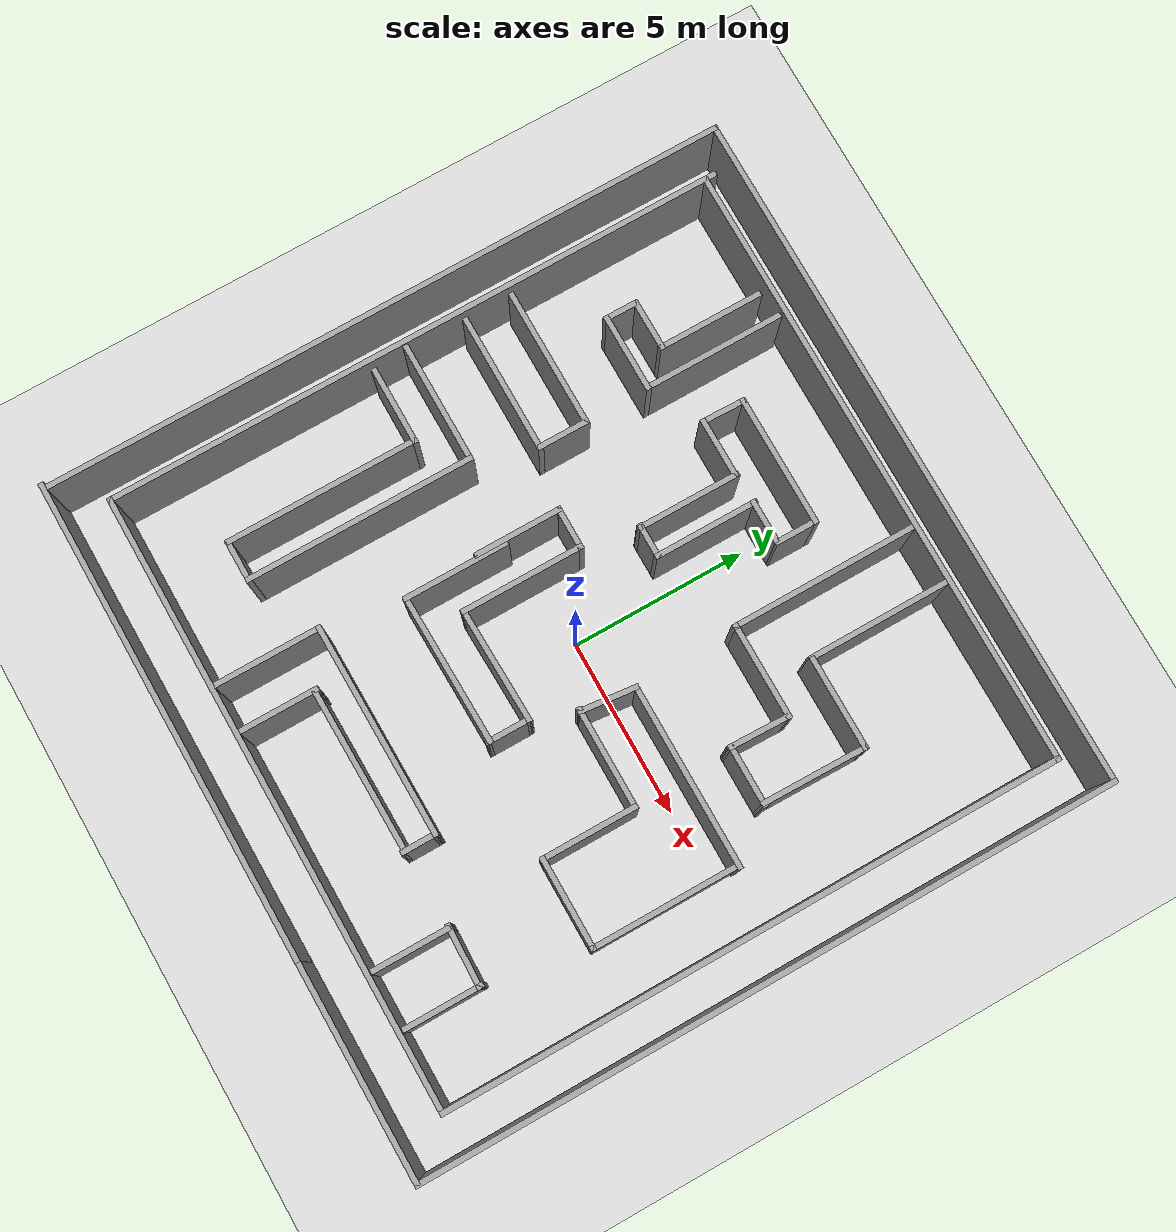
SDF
<sdf version="1.7">
 <world name="default">
  <light name="sun" type="directional">
   <pose>0 0 10 0 -0 0</pose>
   <diffuse>0.8 0.8 0.8 1</diffuse>
   <specular>0.2 0.2 0.2 1</specular>
   <attenuation>
    <range>1000</range>
    <constant>0.9</constant>
    <linear>0.01</linear>
    <quadratic>0.001</quadratic>
   </attenuation>
   <direction>-0.5 0.1 -0.9</direction>
   <spot><inner_angle>0</inner_angle><outer_angle>0</outer_angle><falloff>0</falloff></spot>
  </light>
  <model name="ground_plane">
   <static>1</static>
   <link name="link">
    <collision name="collision">
     <geometry><plane><normal>0 0 1</normal><size>100 100</size></plane></geometry>
     <surface><friction><ode><mu>100</mu><mu2>50</mu2></ode></friction></surface>
    </collision>
    <visual name="visual">
     <cast_shadows>0</cast_shadows>
     <geometry><plane><normal>0 0 1</normal><size>100 100</size></plane></geometry>
     <material>
      <script><uri>file://media/materials/scripts/gazebo.material</uri><name>Gazebo/Grey</name></script>
     </material>
    </visual>
   </link>
  </model>
  <gravity>0 0 -9.8</gravity>
  <magnetic_field>6e-06 2.3e-05 -4.2e-05</magnetic_field>
  <atmosphere type="adiabatic"/>
  <physics type="ode">
   <max_step_size>0.001</max_step_size>
   <real_time_factor>1</real_time_factor>
   <real_time_update_rate>1000</real_time_update_rate>
  </physics>
  <scene><ambient>0.4 0.4 0.4 1</ambient><background>0.7 0.7 0.7 1</background><shadows>1</shadows></scene>
  <audio><device>default</device></audio>
  <spherical_coordinates>
   <surface_model>EARTH_WGS84</surface_model>
   <latitude_deg>0</latitude_deg>
   <longitude_deg>0</longitude_deg>
   <elevation>0</elevation>
   <heading_deg>0</heading_deg>
  </spherical_coordinates>
  <model name="test7">
   <pose>-0.000778 -0.117679 0 0 -0 0</pose>
   <link name="Wall_0">
    <collision name="Wall_0_Collision">
     <geometry><box><size>13.75 0.15 2.5</size></box></geometry>
     <pose>0 0 1.25 0 -0 0</pose>
    </collision>
    <visual name="Wall_0_Visual">
     <pose>0 0 1.25 0 -0 0</pose>
     <geometry><box><size>13.75 0.15 2.5</size></box></geometry>
     <material>
      <script><uri>file://media/materials/scripts/gazebo.material</uri><name>Gazebo/Grey</name></script>
      <ambient>1 1 1 1</ambient>
     </material>
     <meta><layer>0</layer></meta>
    </visual>
    <pose>-3.05 -9.8 0 0 -0 0</pose>
   </link>
   <link name="Wall_10">
    <collision name="Wall_10_Collision">
     <geometry><box><size>17.5 0.15 2.5</size></box></geometry>
     <pose>0 0 1.25 0 -0 0</pose>
    </collision>
    <visual name="Wall_10_Visual">
     <pose>0 0 1.25 0 -0 0</pose>
     <geometry><box><size>17.5 0.15 2.5</size></box></geometry>
     <material>
      <script><uri>file://media/materials/scripts/gazebo.material</uri><name>Gazebo/Grey</name></script>
      <ambient>1 1 1 1</ambient>
     </material>
     <meta><layer>0</layer></meta>
    </visual>
    <pose>0.011162 8.87805 0 0 -0 3.14159</pose>
   </link>
   <link name="Wall_12">
    <collision name="Wall_12_Collision">
     <geometry><box><size>4 0.15 2.5</size></box></geometry>
     <pose>0 0 1.25 0 -0 0</pose>
    </collision>
    <visual name="Wall_12_Visual">
     <pose>0 0 1.25 0 -0 0</pose>
     <geometry><box><size>4 0.15 2.5</size></box></geometry>
     <material>
      <script><uri>file://media/materials/scripts/gazebo.material</uri><name>Gazebo/Grey</name></script>
      <ambient>1 1 1 1</ambient>
     </material>
     <meta><layer>0</layer></meta>
    </visual>
    <pose>-4.54415 6.72153 0 0 -0 -1.5708</pose>
   </link>
   <link name="Wall_13">
    <collision name="Wall_13_Collision">
     <geometry><box><size>2.25 0.15 2.5</size></box></geometry>
     <pose>0 0 1.25 0 -0 0</pose>
    </collision>
    <visual name="Wall_13_Visual">
     <pose>0 0 1.25 0 -0 0</pose>
     <geometry><box><size>2.25 0.15 2.5</size></box></geometry>
     <material>
      <script><uri>file://media/materials/scripts/gazebo.material</uri><name>Gazebo/Grey</name></script>
      <ambient>1 1 1 1</ambient>
     </material>
     <meta><layer>0</layer></meta>
    </visual>
    <pose>-5.59415 4.79653 0 0 -0 3.14159</pose>
   </link>
   <link name="Wall_14">
    <collision name="Wall_14_Collision">
     <geometry><box><size>1 0.15 2.5</size></box></geometry>
     <pose>0 0 1.25 0 -0 0</pose>
    </collision>
    <visual name="Wall_14_Visual">
     <pose>0 0 1.25 0 -0 0</pose>
     <geometry><box><size>1 0.15 2.5</size></box></geometry>
     <material>
      <script><uri>file://media/materials/scripts/gazebo.material</uri><name>Gazebo/Grey</name></script>
      <ambient>1 1 1 1</ambient>
     </material>
     <meta><layer>0</layer></meta>
    </visual>
    <pose>-6.64414 5.22153 0 0 -0 1.5708</pose>
   </link>
   <link name="Wall_15">
    <collision name="Wall_15_Collision">
     <geometry><box><size>1.5 0.15 2.5</size></box></geometry>
     <pose>0 0 1.25 0 -0 0</pose>
    </collision>
    <visual name="Wall_15_Visual">
     <pose>0 0 1.25 0 -0 0</pose>
     <geometry><box><size>1.5 0.15 2.5</size></box></geometry>
     <material>
      <script><uri>file://media/materials/scripts/gazebo.material</uri><name>Gazebo/Grey</name></script>
      <ambient>1 1 1 1</ambient>
     </material>
     <meta><layer>0</layer></meta>
    </visual>
    <pose>-5.96915 5.64653 0 0 -0 0</pose>
   </link>
   <link name="Wall_16">
    <collision name="Wall_16_Collision">
     <geometry><box><size>3 0.15 2.5</size></box></geometry>
     <pose>0 0 1.25 0 -0 0</pose>
    </collision>
    <visual name="Wall_16_Visual">
     <pose>0 0 1.25 0 -0 0</pose>
     <geometry><box><size>3 0.15 2.5</size></box></geometry>
     <material>
      <script><uri>file://media/materials/scripts/gazebo.material</uri><name>Gazebo/Grey</name></script>
      <ambient>1 1 1 1</ambient>
     </material>
     <meta><layer>0</layer></meta>
    </visual>
    <pose>-5.29415 7.07153 0 0 -0 1.5708</pose>
   </link>
   <link name="Wall_18">
    <collision name="Wall_18_Collision">
     <geometry><box><size>3 0.15 2.5</size></box></geometry>
     <pose>0 0 1.25 0 -0 0</pose>
    </collision>
    <visual name="Wall_18_Visual">
     <pose>0 0 1.25 0 -0 0</pose>
     <geometry><box><size>3 0.15 2.5</size></box></geometry>
     <material>
      <script><uri>file://media/materials/scripts/gazebo.material</uri><name>Gazebo/Grey</name></script>
      <ambient>1 1 1 1</ambient>
     </material>
     <meta><layer>0</layer></meta>
    </visual>
    <pose>-2.77856 -1.76689 0 0 -0 -1.5708</pose>
   </link>
   <link name="Wall_19">
    <collision name="Wall_19_Collision">
     <geometry><box><size>4.32345 0.15 2.5</size></box></geometry>
     <pose>0 0 1.25 0 -0 0</pose>
    </collision>
    <visual name="Wall_19_Visual">
     <pose>0 0 1.25 0 -0 0</pose>
     <geometry><box><size>4.32345 0.15 2.5</size></box></geometry>
     <material>
      <script><uri>file://media/materials/scripts/gazebo.material</uri><name>Gazebo/Grey</name></script>
      <ambient>1 1 1 1</ambient>
     </material>
     <meta><layer>0</layer></meta>
    </visual>
    <pose>-0.69223 -3.15144 0 0 -0 0.019388</pose>
   </link>
   <link name="Wall_2">
    <collision name="Wall_2_Collision">
     <geometry><box><size>6.25 0.15 2.5</size></box></geometry>
     <pose>0 0 1.25 0 -0 0</pose>
    </collision>
    <visual name="Wall_2_Visual">
     <pose>0 0 1.25 0 -0 0</pose>
     <geometry><box><size>6.25 0.15 2.5</size></box></geometry>
     <material>
      <script><uri>file://media/materials/scripts/gazebo.material</uri><name>Gazebo/Grey</name></script>
      <ambient>1 1 1 1</ambient>
     </material>
     <meta><layer>0</layer></meta>
    </visual>
    <pose>6.8 -9.8 0 0 -0 0</pose>
   </link>
   <link name="Wall_20">
    <collision name="Wall_20_Collision">
     <geometry><box><size>1.25 0.15 2.5</size></box></geometry>
     <pose>0 0 1.25 0 -0 0</pose>
    </collision>
    <visual name="Wall_20_Visual">
     <pose>0 0 1.25 0 -0 0</pose>
     <geometry><box><size>1.25 0.15 2.5</size></box></geometry>
     <material>
      <script><uri>file://media/materials/scripts/gazebo.material</uri><name>Gazebo/Grey</name></script>
      <ambient>1 1 1 1</ambient>
     </material>
     <meta><layer>0</layer></meta>
    </visual>
    <pose>1.3941 -2.60144 0 0 -0 1.5708</pose>
   </link>
   <link name="Wall_21">
    <collision name="Wall_21_Collision">
     <geometry><box><size>3.3237 0.15 2.5</size></box></geometry>
     <pose>0 0 1.25 0 -0 0</pose>
    </collision>
    <visual name="Wall_21_Visual">
     <pose>0 0 1.25 0 -0 0</pose>
     <geometry><box><size>3.3237 0.15 2.5</size></box></geometry>
     <material>
      <script><uri>file://media/materials/scripts/gazebo.material</uri><name>Gazebo/Grey</name></script>
      <ambient>1 1 1 1</ambient>
     </material>
     <meta><layer>0</layer></meta>
    </visual>
    <pose>-0.19223 -2.05144 0 0 -0 -3.1161</pose>
   </link>
   <link name="Wall_22">
    <collision name="Wall_22_Collision">
     <geometry><box><size>3.5 0.15 2.5</size></box></geometry>
     <pose>0 0 1.25 0 -0 0</pose>
    </collision>
    <visual name="Wall_22_Visual">
     <pose>0 0 1.25 0 -0 0</pose>
     <geometry><box><size>3.5 0.15 2.5</size></box></geometry>
     <material>
      <script><uri>file://media/materials/scripts/gazebo.material</uri><name>Gazebo/Grey</name></script>
      <ambient>1 1 1 1</ambient>
     </material>
     <meta><layer>0</layer></meta>
    </visual>
    <pose>-1.77856 -0.416892 0 0 -0 1.5708</pose>
   </link>
   <link name="Wall_23">
    <collision name="Wall_23_Collision">
     <geometry><box><size>1.25 0.15 2.5</size></box></geometry>
     <pose>0 0 1.25 0 -0 0</pose>
    </collision>
    <visual name="Wall_23_Visual">
     <pose>0 0 1.25 0 -0 0</pose>
     <geometry><box><size>1.25 0.15 2.5</size></box></geometry>
     <material>
      <script><uri>file://media/materials/scripts/gazebo.material</uri><name>Gazebo/Grey</name></script>
      <ambient>1 1 1 1</ambient>
     </material>
     <meta><layer>0</layer></meta>
    </visual>
    <pose>-2.32856 1.25811 0 0 -0 3.14159</pose>
   </link>
   <link name="Wall_25">
    <collision name="Wall_25_Collision">
     <geometry><box><size>2.5 0.15 2.5</size></box></geometry>
     <pose>0 0 1.25 0 -0 0</pose>
    </collision>
    <visual name="Wall_25_Visual">
     <pose>0 0 1.25 0 -0 0</pose>
     <geometry><box><size>2.5 0.15 2.5</size></box></geometry>
     <material>
      <script><uri>file://media/materials/scripts/gazebo.material</uri><name>Gazebo/Grey</name></script>
      <ambient>1 1 1 1</ambient>
     </material>
     <meta><layer>0</layer></meta>
    </visual>
    <pose>-2.87856 0.083108 0 0 -0 -1.5708</pose>
   </link>
   <link name="Wall_28">
    <collision name="Wall_28_Collision">
     <geometry><box><size>3.75 0.15 2.5</size></box></geometry>
     <pose>0 0 1.25 0 -0 0</pose>
    </collision>
    <visual name="Wall_28_Visual">
     <pose>0 0 1.25 0 -0 0</pose>
     <geometry><box><size>3.75 0.15 2.5</size></box></geometry>
     <material>
      <script><uri>file://media/materials/scripts/gazebo.material</uri><name>Gazebo/Grey</name></script>
      <ambient>1 1 1 1</ambient>
     </material>
     <meta><layer>0</layer></meta>
    </visual>
    <pose>-1.23941 6.73274 0 0 -0 0</pose>
   </link>
   <link name="Wall_29">
    <collision name="Wall_29_Collision">
     <geometry><box><size>1.25 0.15 2.5</size></box></geometry>
     <pose>0 0 1.25 0 -0 0</pose>
    </collision>
    <visual name="Wall_29_Visual">
     <pose>0 0 1.25 0 -0 0</pose>
     <geometry><box><size>1.25 0.15 2.5</size></box></geometry>
     <material>
      <script><uri>file://media/materials/scripts/gazebo.material</uri><name>Gazebo/Grey</name></script>
      <ambient>1 1 1 1</ambient>
     </material>
     <meta><layer>0</layer></meta>
    </visual>
    <pose>0.560587 6.18274 0 0 -0 -1.5708</pose>
   </link>
   <link name="Wall_3">
    <collision name="Wall_3_Collision">
     <geometry><box><size>19.75 0.15 2.5</size></box></geometry>
     <pose>0 0 1.25 0 -0 0</pose>
    </collision>
    <visual name="Wall_3_Visual">
     <pose>0 0 1.25 0 -0 0</pose>
     <geometry><box><size>19.75 0.15 2.5</size></box></geometry>
     <material>
      <script><uri>file://media/materials/scripts/gazebo.material</uri><name>Gazebo/Grey</name></script>
      <ambient>1 1 1 1</ambient>
     </material>
     <meta><layer>0</layer></meta>
    </visual>
    <pose>9.85 -0 0 0 -0 1.5708</pose>
   </link>
   <link name="Wall_31">
    <collision name="Wall_31_Collision">
     <geometry><box><size>1.27578 0.15 2.5</size></box></geometry>
     <pose>0 0 1.25 0 -0 0</pose>
    </collision>
    <visual name="Wall_31_Visual">
     <pose>0 0 1.25 0 -0 0</pose>
     <geometry><box><size>1.27578 0.15 2.5</size></box></geometry>
     <material>
      <script><uri>file://media/materials/scripts/gazebo.material</uri><name>Gazebo/Grey</name></script>
      <ambient>1 1 1 1</ambient>
     </material>
     <meta><layer>0</layer></meta>
    </visual>
    <pose>-3.05216 6.16999 0 0 -0 1.54815</pose>
   </link>
   <link name="Wall_34">
    <collision name="Wall_34_Collision">
     <geometry><box><size>4 0.15 2.5</size></box></geometry>
     <pose>0 0 1.25 0 -0 0</pose>
    </collision>
    <visual name="Wall_34_Visual">
     <pose>0 0 1.25 0 -0 0</pose>
     <geometry><box><size>4 0.15 2.5</size></box></geometry>
     <material>
      <script><uri>file://media/materials/scripts/gazebo.material</uri><name>Gazebo/Grey</name></script>
      <ambient>1 1 1 1</ambient>
     </material>
     <meta><layer>0</layer></meta>
    </visual>
    <pose>3.52046 6.80827 0 0 -0 -1.5708</pose>
   </link>
   <link name="Wall_35">
    <collision name="Wall_35_Collision">
     <geometry><box><size>2.67995 0.15 2.5</size></box></geometry>
     <pose>0 0 1.25 0 -0 0</pose>
    </collision>
    <visual name="Wall_35_Visual">
     <pose>0 0 1.25 0 -0 0</pose>
     <geometry><box><size>2.67995 0.15 2.5</size></box></geometry>
     <material>
      <script><uri>file://media/materials/scripts/gazebo.material</uri><name>Gazebo/Grey</name></script>
      <ambient>1 1 1 1</ambient>
     </material>
     <meta><layer>0</layer></meta>
    </visual>
    <pose>4.83196 4.88326 0 0 -0 0</pose>
   </link>
   <link name="Wall_36">
    <collision name="Wall_36_Collision">
     <geometry><box><size>3.02935 0.15 2.5</size></box></geometry>
     <pose>0 0 1.25 0 -0 0</pose>
    </collision>
    <visual name="Wall_36_Visual">
     <pose>0 0 1.25 0 -0 0</pose>
     <geometry><box><size>3.02935 0.15 2.5</size></box></geometry>
     <material>
      <script><uri>file://media/materials/scripts/gazebo.material</uri><name>Gazebo/Grey</name></script>
      <ambient>1 1 1 1</ambient>
     </material>
     <meta><layer>0</layer></meta>
    </visual>
    <pose>6.0767 3.44373 0 0 -0 -1.58485</pose>
   </link>
   <link name="Wall_37">
    <collision name="Wall_37_Collision">
     <geometry><box><size>1.75 0.15 2.5</size></box></geometry>
     <pose>0 0 1.25 0 -0 0</pose>
    </collision>
    <visual name="Wall_37_Visual">
     <pose>0 0 1.25 0 -0 0</pose>
     <geometry><box><size>1.75 0.15 2.5</size></box></geometry>
     <material>
      <script><uri>file://media/materials/scripts/gazebo.material</uri><name>Gazebo/Grey</name></script>
      <ambient>1 1 1 1</ambient>
     </material>
     <meta><layer>0</layer></meta>
    </visual>
    <pose>5.29693 2.0042 0 0 -0 3.14159</pose>
   </link>
   <link name="Wall_38">
    <collision name="Wall_38_Collision">
     <geometry><box><size>1.77957 0.15 2.5</size></box></geometry>
     <pose>0 0 1.25 0 -0 0</pose>
    </collision>
    <visual name="Wall_38_Visual">
     <pose>0 0 1.25 0 -0 0</pose>
     <geometry><box><size>1.77957 0.15 2.5</size></box></geometry>
     <material>
      <script><uri>file://media/materials/scripts/gazebo.material</uri><name>Gazebo/Grey</name></script>
      <ambient>1 1 1 1</ambient>
     </material>
     <meta><layer>0</layer></meta>
    </visual>
    <pose>4.4767 2.81873 0 0 -0 1.54597</pose>
   </link>
   <link name="Wall_39">
    <collision name="Wall_39_Collision">
     <geometry><box><size>2.75 0.15 2.5</size></box></geometry>
     <pose>0 0 1.25 0 -0 0</pose>
    </collision>
    <visual name="Wall_39_Visual">
     <pose>0 0 1.25 0 -0 0</pose>
     <geometry><box><size>2.75 0.15 2.5</size></box></geometry>
     <material>
      <script><uri>file://media/materials/scripts/gazebo.material</uri><name>Gazebo/Grey</name></script>
      <ambient>1 1 1 1</ambient>
     </material>
     <meta><layer>0</layer></meta>
    </visual>
    <pose>3.19693 3.63327 0 0 -0 3.14159</pose>
   </link>
   <link name="Wall_4">
    <collision name="Wall_4_Collision">
     <geometry><box><size>19.75 0.15 2.5</size></box></geometry>
     <pose>0 0 1.25 0 -0 0</pose>
    </collision>
    <visual name="Wall_4_Visual">
     <pose>0 0 1.25 0 -0 0</pose>
     <geometry><box><size>19.75 0.15 2.5</size></box></geometry>
     <material>
      <script><uri>file://media/materials/scripts/gazebo.material</uri><name>Gazebo/Grey</name></script>
      <ambient>1 1 1 1</ambient>
     </material>
     <meta><layer>0</layer></meta>
    </visual>
    <pose>0.05 9.8 0 0 -0 3.14159</pose>
   </link>
   <link name="Wall_40">
    <collision name="Wall_40_Collision">
     <geometry><box><size>5.25 0.15 2.5</size></box></geometry>
     <pose>0 0 1.25 0 -0 0</pose>
    </collision>
    <visual name="Wall_40_Visual">
     <pose>0 0 1.25 0 -0 0</pose>
     <geometry><box><size>5.25 0.15 2.5</size></box></geometry>
     <material>
      <script><uri>file://media/materials/scripts/gazebo.material</uri><name>Gazebo/Grey</name></script>
      <ambient>1 1 1 1</ambient>
     </material>
     <meta><layer>0</layer></meta>
    </visual>
    <pose>1.89693 6.18327 0 0 -0 1.5708</pose>
   </link>
   <link name="Wall_42">
    <collision name="Wall_42_Collision">
     <geometry><box><size>3.5 0.15 2.5</size></box></geometry>
     <pose>0 0 1.25 0 -0 0</pose>
    </collision>
    <visual name="Wall_42_Visual">
     <pose>0 0 1.25 0 -0 0</pose>
     <geometry><box><size>3.5 0.15 2.5</size></box></geometry>
     <material>
      <script><uri>file://media/materials/scripts/gazebo.material</uri><name>Gazebo/Grey</name></script>
      <ambient>1 1 1 1</ambient>
     </material>
     <meta><layer>0</layer></meta>
    </visual>
    <pose>-6.81783 -0.042653 0 0 -0 0</pose>
   </link>
   <link name="Wall_43">
    <collision name="Wall_43_Collision">
     <geometry><box><size>6.5 0.15 2.5</size></box></geometry>
     <pose>0 0 1.25 0 -0 0</pose>
    </collision>
    <visual name="Wall_43_Visual">
     <pose>0 0 1.25 0 -0 0</pose>
     <geometry><box><size>6.5 0.15 2.5</size></box></geometry>
     <material>
      <script><uri>file://media/materials/scripts/gazebo.material</uri><name>Gazebo/Grey</name></script>
      <ambient>1 1 1 1</ambient>
     </material>
     <meta><layer>0</layer></meta>
    </visual>
    <pose>-5.14283 -3.21765 0 0 -0 -1.5708</pose>
   </link>
   <link name="Wall_44">
    <collision name="Wall_44_Collision">
     <geometry><box><size>1.25 0.15 2.5</size></box></geometry>
     <pose>0 0 1.25 0 -0 0</pose>
    </collision>
    <visual name="Wall_44_Visual">
     <pose>0 0 1.25 0 -0 0</pose>
     <geometry><box><size>1.25 0.15 2.5</size></box></geometry>
     <material>
      <script><uri>file://media/materials/scripts/gazebo.material</uri><name>Gazebo/Grey</name></script>
      <ambient>1 1 1 1</ambient>
     </material>
     <meta><layer>0</layer></meta>
    </visual>
    <pose>-5.69283 -6.39265 0 0 -0 3.14159</pose>
   </link>
   <link name="Wall_45">
    <collision name="Wall_45_Collision">
     <geometry><box><size>5.5 0.15 2.5</size></box></geometry>
     <pose>0 0 1.25 0 -0 0</pose>
    </collision>
    <visual name="Wall_45_Visual">
     <pose>0 0 1.25 0 -0 0</pose>
     <geometry><box><size>5.5 0.15 2.5</size></box></geometry>
     <material>
      <script><uri>file://media/materials/scripts/gazebo.material</uri><name>Gazebo/Grey</name></script>
      <ambient>1 1 1 1</ambient>
     </material>
     <meta><layer>0</layer></meta>
    </visual>
    <pose>-6.24284 -3.71765 0 0 -0 1.5708</pose>
   </link>
   <link name="Wall_46">
    <collision name="Wall_46_Collision">
     <geometry><box><size>2.25 0.15 2.5</size></box></geometry>
     <pose>0 0 1.25 0 -0 0</pose>
    </collision>
    <visual name="Wall_46_Visual">
     <pose>0 0 1.25 0 -0 0</pose>
     <geometry><box><size>2.25 0.15 2.5</size></box></geometry>
     <material>
      <script><uri>file://media/materials/scripts/gazebo.material</uri><name>Gazebo/Grey</name></script>
      <ambient>1 1 1 1</ambient>
     </material>
     <meta><layer>0</layer></meta>
    </visual>
    <pose>-7.29283 -1.04265 0 0 -0 3.14159</pose>
   </link>
   <link name="Wall_48">
    <collision name="Wall_48_Collision">
     <geometry><box><size>3 0.15 2.5</size></box></geometry>
     <pose>0 0 1.25 0 -0 0</pose>
    </collision>
    <visual name="Wall_48_Visual">
     <pose>0 0 1.25 0 -0 0</pose>
     <geometry><box><size>3 0.15 2.5</size></box></geometry>
     <material>
      <script><uri>file://media/materials/scripts/gazebo.material</uri><name>Gazebo/Grey</name></script>
      <ambient>1 1 1 1</ambient>
     </material>
     <meta><layer>0</layer></meta>
    </visual>
    <pose>-3.18504 -6.91042 0 0 -0 1.5708</pose>
   </link>
   <link name="Wall_49">
    <collision name="Wall_49_Collision">
     <geometry><box><size>6.07514 0.15 2.5</size></box></geometry>
     <pose>0 0 1.25 0 -0 0</pose>
    </collision>
    <visual name="Wall_49_Visual">
     <pose>0 0 1.25 0 -0 0</pose>
     <geometry><box><size>6.07514 0.15 2.5</size></box></geometry>
     <material>
      <script><uri>file://media/materials/scripts/gazebo.material</uri><name>Gazebo/Grey</name></script>
      <ambient>1 1 1 1</ambient>
     </material>
     <meta><layer>0</layer></meta>
    </visual>
    <pose>-0.222468 -5.41564 0 0 -0 0.007852</pose>
   </link>
   <link name="Wall_5">
    <collision name="Wall_5_Collision">
     <geometry><box><size>19.75 0.15 2.5</size></box></geometry>
     <pose>0 0 1.25 0 -0 0</pose>
    </collision>
    <visual name="Wall_5_Visual">
     <pose>0 0 1.25 0 -0 0</pose>
     <geometry><box><size>19.75 0.15 2.5</size></box></geometry>
     <material>
      <script><uri>file://media/materials/scripts/gazebo.material</uri><name>Gazebo/Grey</name></script>
      <ambient>1 1 1 1</ambient>
     </material>
     <meta><layer>0</layer></meta>
    </visual>
    <pose>-9.75 -0 0 0 -0 -1.5708</pose>
   </link>
   <link name="Wall_50">
    <collision name="Wall_50_Collision">
     <geometry><box><size>1 0.15 2.5</size></box></geometry>
     <pose>0 0 1.25 0 -0 0</pose>
    </collision>
    <visual name="Wall_50_Visual">
     <pose>0 0 1.25 0 -0 0</pose>
     <geometry><box><size>1 0.15 2.5</size></box></geometry>
     <material>
      <script><uri>file://media/materials/scripts/gazebo.material</uri><name>Gazebo/Grey</name></script>
      <ambient>1 1 1 1</ambient>
     </material>
     <meta><layer>0</layer></meta>
    </visual>
    <pose>2.7401 -5.8639 0 0 -0 -1.5708</pose>
   </link>
   <link name="Wall_51">
    <collision name="Wall_51_Collision">
     <geometry><box><size>4.74947 0.15 2.5</size></box></geometry>
     <pose>0 0 1.25 0 -0 0</pose>
    </collision>
    <visual name="Wall_51_Visual">
     <pose>0 0 1.25 0 -0 0</pose>
     <geometry><box><size>4.74947 0.15 2.5</size></box></geometry>
     <material>
      <script><uri>file://media/materials/scripts/gazebo.material</uri><name>Gazebo/Grey</name></script>
      <ambient>1 1 1 1</ambient>
     </material>
     <meta><layer>0</layer></meta>
    </visual>
    <pose>0.440366 -6.26564 0 0 -0 -3.13148</pose>
   </link>
   <link name="Wall_52">
    <collision name="Wall_52_Collision">
     <geometry><box><size>2.25 0.15 2.5</size></box></geometry>
     <pose>0 0 1.25 0 -0 0</pose>
    </collision>
    <visual name="Wall_52_Visual">
     <pose>0 0 1.25 0 -0 0</pose>
     <geometry><box><size>2.25 0.15 2.5</size></box></geometry>
     <material>
      <script><uri>file://media/materials/scripts/gazebo.material</uri><name>Gazebo/Grey</name></script>
      <ambient>1 1 1 1</ambient>
     </material>
     <meta><layer>0</layer></meta>
    </visual>
    <pose>-1.85937 -7.29238 0 0 -0 -1.5708</pose>
   </link>
   <link name="Wall_58">
    <collision name="Wall_58_Collision">
     <geometry><box><size>4 0.15 2.5</size></box></geometry>
     <pose>0 0 1.25 0 -0 0</pose>
    </collision>
    <visual name="Wall_58_Visual">
     <pose>0 0 1.25 0 -0 0</pose>
     <geometry><box><size>4 0.15 2.5</size></box></geometry>
     <material>
      <script><uri>file://media/materials/scripts/gazebo.material</uri><name>Gazebo/Grey</name></script>
      <ambient>1 1 1 1</ambient>
     </material>
     <meta><layer>0</layer></meta>
    </visual>
    <pose>-6.45675 2.98404 0 0 -0 0</pose>
   </link>
   <link name="Wall_59">
    <collision name="Wall_59_Collision">
     <geometry><box><size>1.5 0.15 2.5</size></box></geometry>
     <pose>0 0 1.25 0 -0 0</pose>
    </collision>
    <visual name="Wall_59_Visual">
     <pose>0 0 1.25 0 -0 0</pose>
     <geometry><box><size>1.5 0.15 2.5</size></box></geometry>
     <material>
      <script><uri>file://media/materials/scripts/gazebo.material</uri><name>Gazebo/Grey</name></script>
      <ambient>1 1 1 1</ambient>
     </material>
     <meta><layer>0</layer></meta>
    </visual>
    <pose>-4.53175 2.30904 0 0 -0 -1.5708</pose>
   </link>
   <link name="Wall_60">
    <collision name="Wall_60_Collision">
     <geometry><box><size>4 0.15 2.5</size></box></geometry>
     <pose>0 0 1.25 0 -0 0</pose>
    </collision>
    <visual name="Wall_60_Visual">
     <pose>0 0 1.25 0 -0 0</pose>
     <geometry><box><size>4 0.15 2.5</size></box></geometry>
     <material>
      <script><uri>file://media/materials/scripts/gazebo.material</uri><name>Gazebo/Grey</name></script>
      <ambient>1 1 1 1</ambient>
     </material>
     <meta><layer>0</layer></meta>
    </visual>
    <pose>-6.45675 1.63404 0 0 -0 3.14159</pose>
   </link>
   <link name="Wall_67">
    <collision name="Wall_67_Collision">
     <geometry><box><size>5.25 0.15 2.5</size></box></geometry>
     <pose>0 0 1.25 0 -0 0</pose>
    </collision>
    <visual name="Wall_67_Visual">
     <pose>0 0 1.25 0 -0 0</pose>
     <geometry><box><size>5.25 0.15 2.5</size></box></geometry>
     <material>
      <script><uri>file://media/materials/scripts/gazebo.material</uri><name>Gazebo/Grey</name></script>
      <ambient>1 1 1 1</ambient>
     </material>
     <meta><layer>0</layer></meta>
    </visual>
    <pose>4.55605 0.702343 0 0 -0 0</pose>
   </link>
   <link name="Wall_68">
    <collision name="Wall_68_Collision">
     <geometry><box><size>4.25 0.15 2.5</size></box></geometry>
     <pose>0 0 1.25 0 -0 0</pose>
    </collision>
    <visual name="Wall_68_Visual">
     <pose>0 0 1.25 0 -0 0</pose>
     <geometry><box><size>4.25 0.15 2.5</size></box></geometry>
     <material>
      <script><uri>file://media/materials/scripts/gazebo.material</uri><name>Gazebo/Grey</name></script>
      <ambient>1 1 1 1</ambient>
     </material>
     <meta><layer>0</layer></meta>
    </visual>
    <pose>7.05952 -1.34766 0 0 -0 -1.5708</pose>
   </link>
   <link name="Wall_69">
    <collision name="Wall_69_Collision">
     <geometry><box><size>2.63395 0.15 2.5</size></box></geometry>
     <pose>0 0 1.25 0 -0 0</pose>
    </collision>
    <visual name="Wall_69_Visual">
     <pose>0 0 1.25 0 -0 0</pose>
     <geometry><box><size>2.63395 0.15 2.5</size></box></geometry>
     <material>
      <script><uri>file://media/materials/scripts/gazebo.material</uri><name>Gazebo/Grey</name></script>
      <ambient>1 1 1 1</ambient>
     </material>
     <meta><layer>0</layer></meta>
    </visual>
    <pose>5.81754 -3.39766 0 0 -0 3.14159</pose>
   </link>
   <link name="Wall_7">
    <collision name="Wall_7_Collision">
     <geometry><box><size>17.75 0.15 2.5</size></box></geometry>
     <pose>0 0 1.25 0 -0 0</pose>
    </collision>
    <visual name="Wall_7_Visual">
     <pose>0 0 1.25 0 -0 0</pose>
     <geometry><box><size>17.75 0.15 2.5</size></box></geometry>
     <material>
      <script><uri>file://media/materials/scripts/gazebo.material</uri><name>Gazebo/Grey</name></script>
      <ambient>1 1 1 1</ambient>
     </material>
     <meta><layer>0</layer></meta>
    </visual>
    <pose>-8.66384 0.328051 0 0 -0 -1.5708</pose>
   </link>
   <link name="Wall_70">
    <collision name="Wall_70_Collision">
     <geometry><box><size>2.75 0.15 2.5</size></box></geometry>
     <pose>0 0 1.25 0 -0 0</pose>
    </collision>
    <visual name="Wall_70_Visual">
     <pose>0 0 1.25 0 -0 0</pose>
     <geometry><box><size>2.75 0.15 2.5</size></box></geometry>
     <material>
      <script><uri>file://media/materials/scripts/gazebo.material</uri><name>Gazebo/Grey</name></script>
      <ambient>1 1 1 1</ambient>
     </material>
     <meta><layer>0</layer></meta>
    </visual>
    <pose>4.57557 -2.09766 0 0 -0 1.5708</pose>
   </link>
   <link name="Wall_71">
    <collision name="Wall_71_Collision">
     <geometry><box><size>2.87781 0.15 2.5</size></box></geometry>
     <pose>0 0 1.25 0 -0 0</pose>
    </collision>
    <visual name="Wall_71_Visual">
     <pose>0 0 1.25 0 -0 0</pose>
     <geometry><box><size>2.87781 0.15 2.5</size></box></geometry>
     <material>
      <script><uri>file://media/materials/scripts/gazebo.material</uri><name>Gazebo/Grey</name></script>
      <ambient>1 1 1 1</ambient>
     </material>
     <meta><layer>0</layer></meta>
    </visual>
    <pose>3.16514 -0.797657 0 0 -0 3.14159</pose>
   </link>
   <link name="Wall_72">
    <collision name="Wall_72_Collision">
     <geometry><box><size>1.65833 0.15 2.5</size></box></geometry>
     <pose>0 0 1.25 0 -0 0</pose>
    </collision>
    <visual name="Wall_72_Visual">
     <pose>0 0 1.25 0 -0 0</pose>
     <geometry><box><size>1.65833 0.15 2.5</size></box></geometry>
     <material>
      <script><uri>file://media/materials/scripts/gazebo.material</uri><name>Gazebo/Grey</name></script>
      <ambient>1 1 1 1</ambient>
     </material>
     <meta><layer>0</layer></meta>
    </visual>
    <pose>1.9269 -0.047657 0 0 -0 1.46566</pose>
   </link>
   <link name="Wall_74">
    <collision name="Wall_74_Collision">
     <geometry><box><size>1.75 0.15 2.5</size></box></geometry>
     <pose>0 0 1.25 0 -0 0</pose>
    </collision>
    <visual name="Wall_74_Visual">
     <pose>0 0 1.25 0 -0 0</pose>
     <geometry><box><size>1.75 0.15 2.5</size></box></geometry>
     <material>
      <script><uri>file://media/materials/scripts/gazebo.material</uri><name>Gazebo/Grey</name></script>
      <ambient>1 1 1 1</ambient>
     </material>
     <meta><layer>0</layer></meta>
    </visual>
    <pose>-2.2649 5.58065 0 0 -0 0</pose>
   </link>
   <link name="Wall_75">
    <collision name="Wall_75_Collision">
     <geometry><box><size>2.92071 0.15 2.5</size></box></geometry>
     <pose>0 0 1.25 0 -0 0</pose>
    </collision>
    <visual name="Wall_75_Visual">
     <pose>0 0 1.25 0 -0 0</pose>
     <geometry><box><size>2.92071 0.15 2.5</size></box></geometry>
     <material>
      <script><uri>file://media/materials/scripts/gazebo.material</uri><name>Gazebo/Grey</name></script>
      <ambient>1 1 1 1</ambient>
     </material>
     <meta><layer>0</layer></meta>
    </visual>
    <pose>-1.4649 4.22215 0 0 -0 -1.5708</pose>
   </link>
   <link name="Wall_76">
    <collision name="Wall_76_Collision">
     <geometry><box><size>1 0.15 2.5</size></box></geometry>
     <pose>0 0 1.25 0 -0 0</pose>
    </collision>
    <visual name="Wall_76_Visual">
     <pose>0 0 1.25 0 -0 0</pose>
     <geometry><box><size>1 0.15 2.5</size></box></geometry>
     <material>
      <script><uri>file://media/materials/scripts/gazebo.material</uri><name>Gazebo/Grey</name></script>
      <ambient>1 1 1 1</ambient>
     </material>
     <meta><layer>0</layer></meta>
    </visual>
    <pose>-1.0665 2.83705 0 0 -0 0</pose>
   </link>
   <link name="Wall_77">
    <collision name="Wall_77_Collision">
     <geometry><box><size>2.9628 0.15 2.5</size></box></geometry>
     <pose>0 0 1.25 0 -0 0</pose>
    </collision>
    <visual name="Wall_77_Visual">
     <pose>0 0 1.25 0 -0 0</pose>
     <geometry><box><size>2.9628 0.15 2.5</size></box></geometry>
     <material>
      <script><uri>file://media/materials/scripts/gazebo.material</uri><name>Gazebo/Grey</name></script>
      <ambient>1 1 1 1</ambient>
     </material>
     <meta><layer>0</layer></meta>
    </visual>
    <pose>-0.614903 4.24345 0 0 -0 1.5708</pose>
   </link>
   <link name="Wall_78">
    <collision name="Wall_78_Collision">
     <geometry><box><size>1.25 0.15 2.5</size></box></geometry>
     <pose>0 0 1.25 0 -0 0</pose>
    </collision>
    <visual name="Wall_78_Visual">
     <pose>0 0 1.25 0 -0 0</pose>
     <geometry><box><size>1.25 0.15 2.5</size></box></geometry>
     <material>
      <script><uri>file://media/materials/scripts/gazebo.material</uri><name>Gazebo/Grey</name></script>
      <ambient>1 1 1 1</ambient>
     </material>
     <meta><layer>0</layer></meta>
    </visual>
    <pose>-0.064903 5.62325 0 0 -0 0</pose>
   </link>
   <link name="Wall_8">
    <collision name="Wall_8_Collision">
     <geometry><box><size>17.5 0.15 2.5</size></box></geometry>
     <pose>0 0 1.25 0 -0 0</pose>
    </collision>
    <visual name="Wall_8_Visual">
     <pose>0 0 1.25 0 -0 0</pose>
     <geometry><box><size>17.5 0.15 2.5</size></box></geometry>
     <material>
      <script><uri>file://media/materials/scripts/gazebo.material</uri><name>Gazebo/Grey</name></script>
      <ambient>1 1 1 1</ambient>
     </material>
     <meta><layer>0</layer></meta>
    </visual>
    <pose>0.011162 -8.47195 0 0 -0 0</pose>
   </link>
   <link name="Wall_80">
    <collision name="Wall_80_Collision">
     <geometry><box><size>2.25 0.15 2.5</size></box></geometry>
     <pose>0 0 1.25 0 -0 0</pose>
    </collision>
    <visual name="Wall_80_Visual">
     <pose>0 0 1.25 0 -0 0</pose>
     <geometry><box><size>2.25 0.15 2.5</size></box></geometry>
     <material>
      <script><uri>file://media/materials/scripts/gazebo.material</uri><name>Gazebo/Grey</name></script>
      <ambient>1 1 1 1</ambient>
     </material>
     <meta><layer>0</layer></meta>
    </visual>
    <pose>4.90344 -7.25169 0 0 -0 1.5708</pose>
   </link>
   <link name="Wall_81">
    <collision name="Wall_81_Collision">
     <geometry><box><size>1.79157 0.15 2.5</size></box></geometry>
     <pose>0 0 1.25 0 -0 0</pose>
    </collision>
    <visual name="Wall_81_Visual">
     <pose>0 0 1.25 0 -0 0</pose>
     <geometry><box><size>1.79157 0.15 2.5</size></box></geometry>
     <material>
      <script><uri>file://media/materials/scripts/gazebo.material</uri><name>Gazebo/Grey</name></script>
      <ambient>1 1 1 1</ambient>
     </material>
     <meta><layer>0</layer></meta>
    </visual>
    <pose>5.67737 -6.22495 0 0 -0 -0.028345</pose>
   </link>
   <link name="Wall_82">
    <collision name="Wall_82_Collision">
     <geometry><box><size>2.25 0.15 2.5</size></box></geometry>
     <pose>0 0 1.25 0 -0 0</pose>
    </collision>
    <visual name="Wall_82_Visual">
     <pose>0 0 1.25 0 -0 0</pose>
     <geometry><box><size>2.25 0.15 2.5</size></box></geometry>
     <material>
      <script><uri>file://media/materials/scripts/gazebo.material</uri><name>Gazebo/Grey</name></script>
      <ambient>1 1 1 1</ambient>
     </material>
     <meta><layer>0</layer></meta>
    </visual>
    <pose>6.49783 -7.25169 0 0 -0 -1.5708</pose>
   </link>
   <link name="Wall_9">
    <collision name="Wall_9_Collision">
     <geometry><box><size>17.5 0.15 2.5</size></box></geometry>
     <pose>0 0 1.25 0 -0 0</pose>
    </collision>
    <visual name="Wall_9_Visual">
     <pose>0 0 1.25 0 -0 0</pose>
     <geometry><box><size>17.5 0.15 2.5</size></box></geometry>
     <material>
      <script><uri>file://media/materials/scripts/gazebo.material</uri><name>Gazebo/Grey</name></script>
      <ambient>1 1 1 1</ambient>
     </material>
     <meta><layer>0</layer></meta>
    </visual>
    <pose>8.68616 0.203051 0 0 -0 1.5708</pose>
   </link>
   <static>1</static>
  </model>
 </world>
</sdf>
